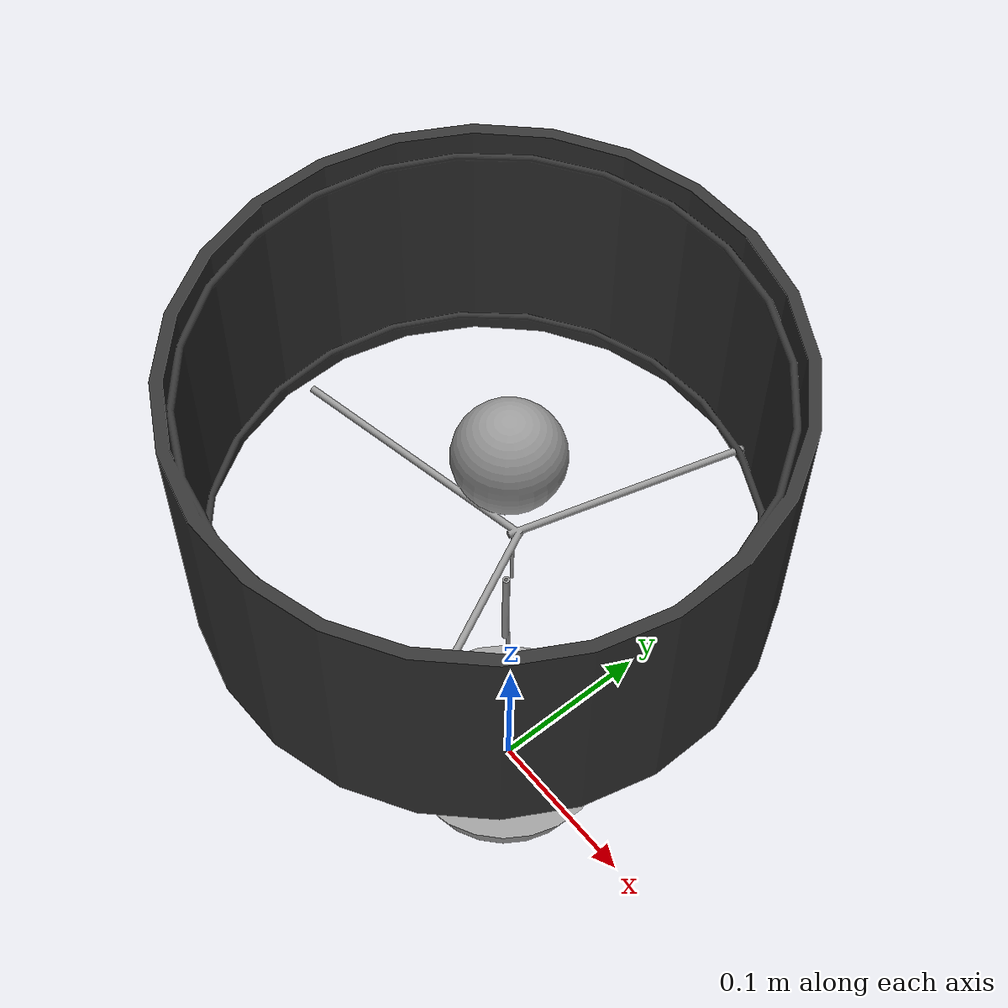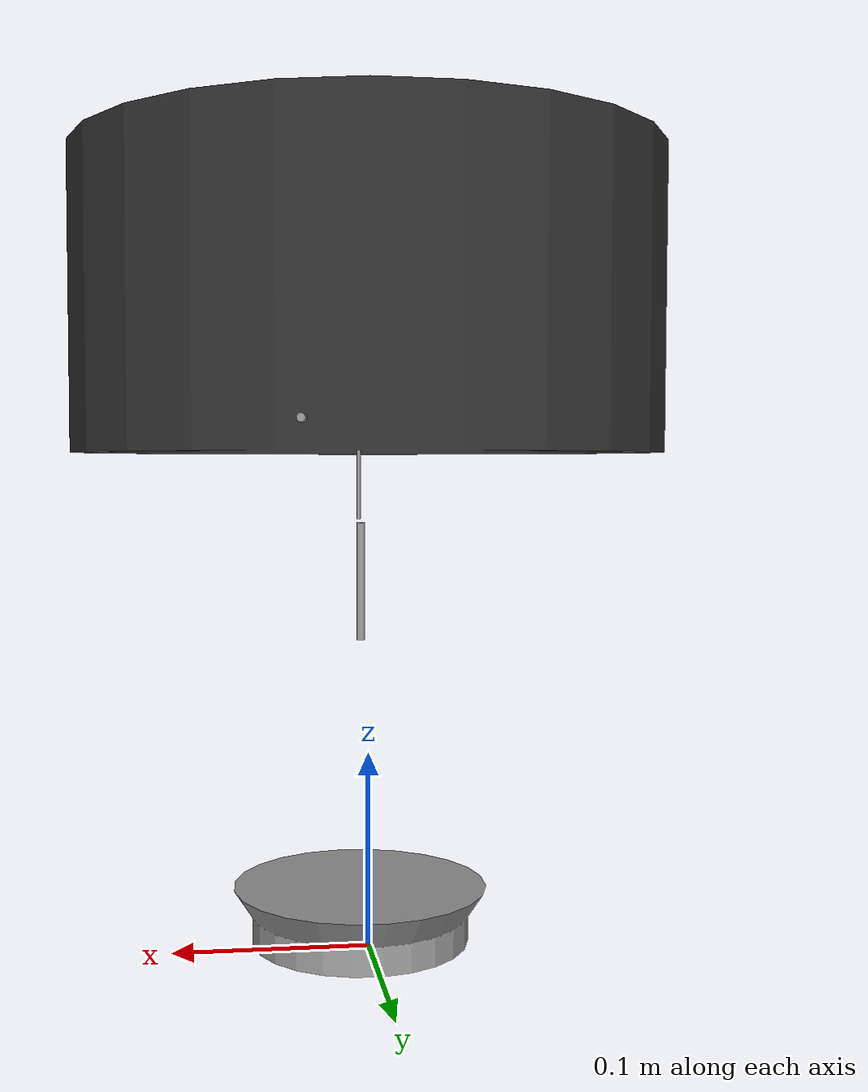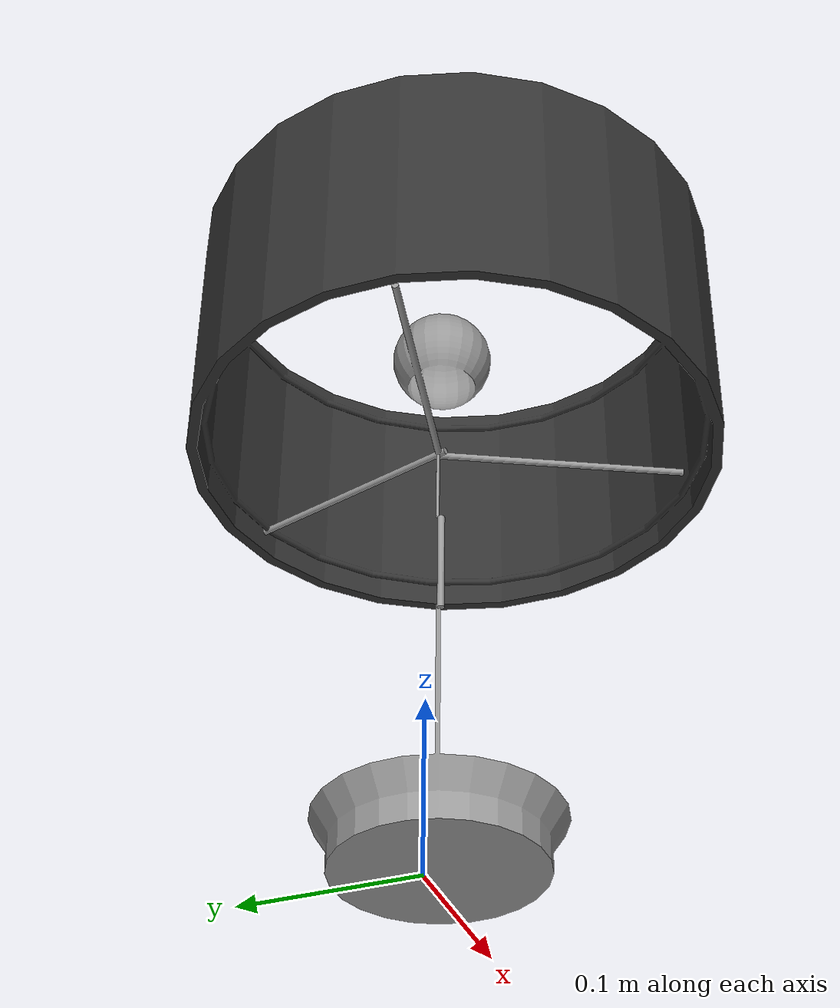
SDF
<?xml version='1.0'?>
<sdf version='1.6'>
  <model name='lamp_table_metal'>
    <link name='link_22'>
      <pose frame=''>0.050078 -0.117145 0.033164 0 -0 0</pose>
       <visual name='visual'>
        <pose frame=''>0 0 0 0 -0 0</pose>
        <geometry>
          <mesh>
            <uri>model://lamp_table_metal/meshes/base.dae</uri>
            <scale>1 1 1</scale>
          </mesh>
        </geometry>
        <material>
          <lighting>1</lighting>
           <ambient>0.60 0.60 0.60 1</ambient>
          <diffuse>0.60 0.60 0.60 1</diffuse>
          <specular>0.01 0.01 0.01 1</specular>
          <emissive>0 0 0 1</emissive>
        </material>
        <cast_shadows>1</cast_shadows>
        <transparency>0</transparency>
      </visual>
      <collision name='collision'>
        <laser_retro>0</laser_retro>
        <max_contacts>10</max_contacts>
        <pose frame=''>0 0 0 0 -0 0</pose>
        <geometry>
          <mesh>
            <uri>model://lamp_table_metal/meshes/base.dae</uri>
            <scale>1 1 1</scale>
          </mesh>
        </geometry>
       </collision>
    </link>
    <link name='link_23'>
      <pose frame=''>0.045204 -0.129507 0.034426 0 -0 0</pose>
       <visual name='visual'>
        <pose frame=''>0 0 0 0 -0 0</pose>
        <geometry>
          <mesh>
            <uri>model://lamp_table_metal/meshes/head.dae</uri>
            <scale>1 1 1</scale>
          </mesh>
        </geometry>
        <material>
          <lighting>1</lighting>
           <ambient>0 0 0 1</ambient>
          <diffuse>0.2 0.2 0.2 1</diffuse>
          <specular>0.01 0.01 0.01 1</specular>
          <emissive>0 0 0 1</emissive>
        </material>
        <cast_shadows>1</cast_shadows>
        <transparency>0</transparency>
      </visual>
      <collision name='collision'>
        <laser_retro>0</laser_retro>
        <max_contacts>10</max_contacts>
        <pose frame=''>0 0 0 0 -0 0</pose>
        <geometry>
          <mesh>
            <uri>model://lamp_table_metal/meshes/head.dae</uri>
            <scale>1 1 1</scale>
          </mesh>
        </geometry>
       </collision>
    </link>
    <static>1</static>
    <allow_auto_disable>1</allow_auto_disable>
  </model>
</sdf>
